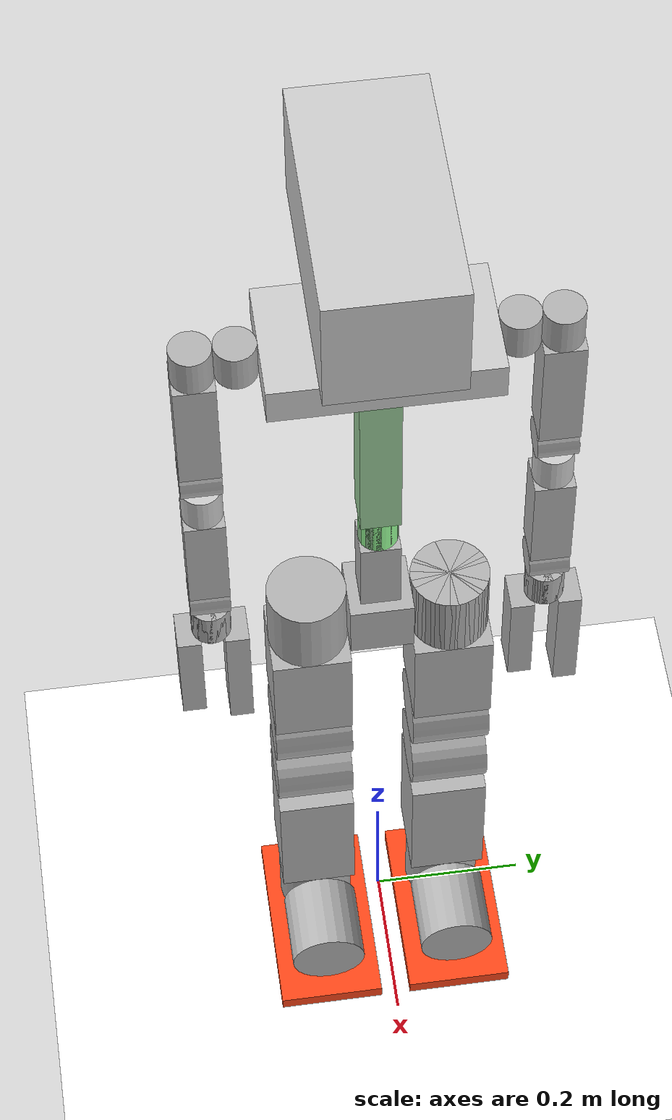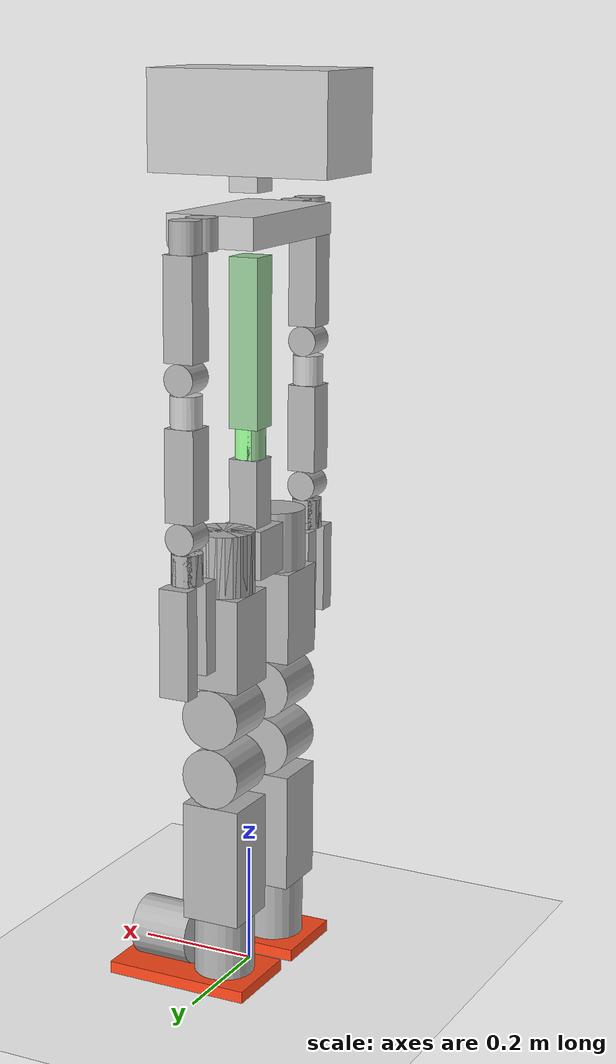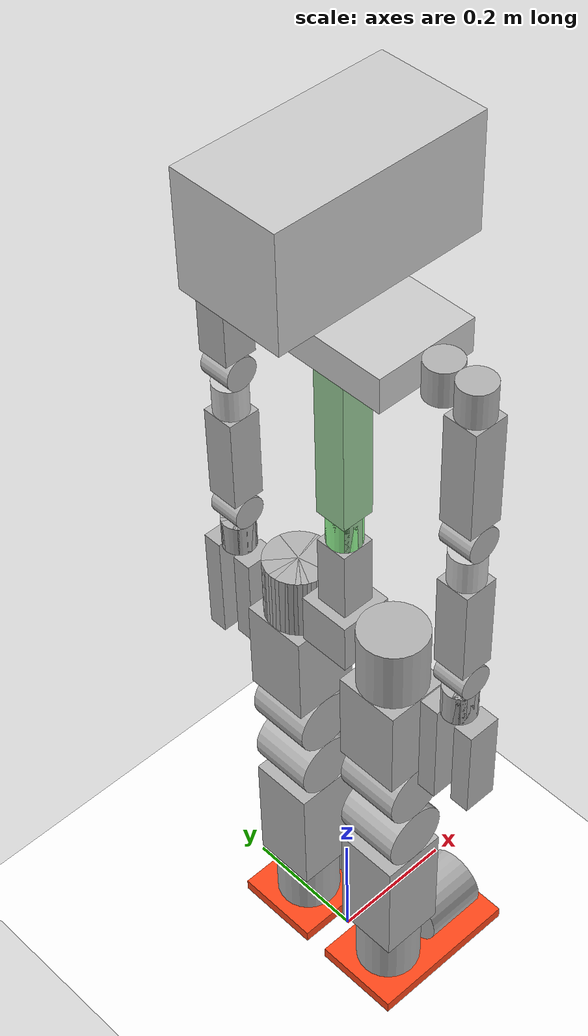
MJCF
<mujoco model="simple_humanoid">
  <default>
    <default class="robot">
      <default class="motor">
        <joint armature="0.001" frictionloss="0.1" damping="0.1" actuatorfrcrange="-10.0 10.0" />
        <motor ctrlrange="-572.958 572.958" />
      </default>
      <default class="visual">
        <geom material="visualgeom" contype="0" conaffinity="0" group="2" />
      </default>
      <default class="collision">
        <geom material="collision_material" condim="3" contype="0" conaffinity="1" priority="1" group="1" solref="0.005 1" solimp="0.99 0.999 1e-05" friction="1 0.01 0.01" />
      </default>
    </default>
    <default class="backlash">
      <joint damping="0.01" frictionloss="0" armature="0.01" limited="true" range="-0.5 0.5" />
    </default>
    <default class="floor">
      <geom contype="1" conaffinity="1" group="0" type="plane" size="0 0 0.05" material="groundplane" rgba="1 1 1 0.3" />
    </default>
  </default>

  <compiler angle="degree" />

  <asset>
    <material name="WAIST_LINK1_APP" rgba="0.6 1.0 0.6 1" />
    <material name="WAIST_LINK2_APP" rgba="0.6 0.8 0.6 1" />
    <material name="WAIST_LINK3_APP" rgba="0.8 0.8 0.8 1" />
    <material name="default_material" rgba="0.7 0.7 0.7 1" />
    <material name="collision_material" rgba="1.0 0.28 0.1 0.9" />
    <texture type="2d" name="groundplane" builtin="checker" mark="edge" rgb1="0.2 0.3 0.4" rgb2="0.1 0.2 0.3" markrgb="0.8 0.8 0.8" width="300" height="300" />
    <material name="groundplane" texture="groundplane" texuniform="true" texrepeat="5 5" reflectance="0.2" />
  </asset>

  <worldbody>
    <body name="BODY" pos="0.00000000 0.00000000 0.72350000" quat="1 0 0 0" childclass="robot">
      <freejoint name="floating_base" />
      <geom name="BODY_visual_0" pos="0 0 0.0955" quat="1.0 0.0 0.0 0.0" material="default_material" type="box" size="0.025 0.025 0.0555" class="visual" />
      <geom name="BODY_visual_1" pos="0 0 0" quat="1.0 0.0 0.0 0.0" material="default_material" type="box" size="0.04 0.04 0.04" class="visual" />
      <body name="IMU" pos="0 0 0" quat="1.0 0.0 0.0 0.0">
        <inertial pos="0 0 0" quat="1.0 0.0 0.0 0.0" mass="0" diaginertia="1.0 1.0 1.0" />
        <geom name="IMU_visual" pos="0 0 0" quat="1.0 0.0 0.0 0.0" material="default_material" type="box" size="0.025 0.025 0.025" class="visual" />
        <site name="IMU_site" pos="0.0 0.0 0.0" />
      </body>
      <body name="RLEG_LINK1" pos="0 -0.09 0" quat="1.0 0.0 0.0 0.0">
        <joint name="RLEG_HIP_R" type="hinge" ref="0.0" class="motor" range="-20 90" axis="1 0 0" />
        <joint name="RLEG_HIP_R_backlash" class="backlash" axis="1 0 0" />
        <inertial pos="0 -0.1 0" quat="1.0 0.0 0.0 0.0" mass="2.5" diaginertia="1.0 1.0 1.0" />
        <geom name="RLEG_LINK1_visual" pos="0 0 0" quat="0.7071231599922605 0.0 0.0 0.7070904020014415" material="default_material" type="cylinder" size="0.05 0.05" class="visual" />
        <body name="RLEG_LINK2" pos="0 0 0" quat="1.0 0.0 0.0 0.0">
          <joint name="RLEG_HIP_P" type="hinge" ref="0.0" class="motor" range="-30.0001 30.0001" axis="0 1 0" />
          <joint name="RLEG_HIP_P_backlash" class="backlash" axis="0 1 0" />
          <inertial pos="0 0 -0.15" quat="1.0 0.0 0.0 0.0" mass="2" diaginertia="1.0 1.0 1.0" />
          <geom name="RLEG_LINK2_visual" pos="0 0 0" quat="0.7071231599922605 0.0 0.0 0.7070904020014415" material="default_material" type="cylinder" size="0.05 0.05" class="visual" />
          <body name="RLEG_LINK3" pos="0 0 -0.3535" quat="1.0 0.0 0.0 0.0">
            <joint name="RLEG_HIP_Y" type="hinge" ref="0.0" class="motor" range="-120.035 40.107" axis="0 0 1" />
            <joint name="RLEG_HIP_Y_backlash" class="backlash" axis="0 0 1" />
            <inertial pos="0 -0.04 0" quat="1.0 0.0 0.0 0.0" mass="5.1" diaginertia="1.0 1.0 1.0" />
            <geom name="RLEG_LINK3_visual_0" pos="0 0 0.22675" quat="1.0 0.0 0.0 0.0" material="default_material" type="box" size="0.05 0.05 0.07675" class="visual" />
            <geom name="RLEG_LINK3_visual_1" pos="0 0 0.1" quat="0.7071054825112363 0.7071080798594735 0.0 0.0" material="default_material" type="cylinder" size="0.05 0.05" class="visual" />
            <body name="RLEG_LINK4" pos="0 0 0" quat="1.0 0.0 0.0 0.0">
              <joint name="RLEG_KNEE" type="hinge" ref="0.0" class="motor" range="0 150" axis="0 1 0" />
              <joint name="RLEG_KNEE_backlash" class="backlash" axis="0 1 0" />
              <inertial pos="0 0 -0.3" quat="1.0 0.0 0.0 0.0" mass="7" diaginertia="1.0 1.0 1.0" />
              <geom name="RLEG_LINK4_visual_0" pos="0 0 0" quat="0.7071054825112363 0.7071080798594735 0.0 0.0" material="default_material" type="cylinder" size="0.05 0.05" class="visual" />
              <geom name="RLEG_LINK4_visual_1" pos="0 0 -0.15" quat="1.0 0.0 0.0 0.0" material="default_material" type="box" size="0.05 0.05 0.1" class="visual" />
              <body name="RLEG_LINK5" pos="0 0 -0.3" quat="1.0 0.0 0.0 0.0">
                <joint name="RLEG_ANKLE_P" type="hinge" ref="0.0" class="motor" range="0 150" axis="0 1 0" />
                <joint name="RLEG_ANKLE_P_backlash" class="backlash" axis="0 1 0" />
                <inertial pos="-0.15 0 0" quat="1.0 0.0 0.0 0.0" mass="2.5" diaginertia="1.0 1.0 1.0" />
                <geom name="RLEG_LINK5_visual" pos="0 0 0" quat="1 0 0 0" material="default_material" type="cylinder" size="0.05 0.05" class="visual" />
                <body name="r_ankle" pos="0 0 0" quat="1.0 0.0 0.0 0.0">
                  <joint name="RLEG_ANKLE_R" type="hinge" ref="0.0" class="motor" range="-72.7656 38.9611" axis="1 0 0" />
                  <joint name="RLEG_ANKLE_R_backlash" class="backlash" axis="1 0 0" />
                  <inertial pos="0.28 0 -0.2" quat="1.0 0.0 0.0 0.0" mass="1.9" diaginertia="1.0 1.0 1.0" />
                  <geom name="r_ankle_collision" pos="0.055 0 -0.06" quat="1.0 0.0 0.0 0.0" type="box" size="0.125 0.07 0.01" class="collision" />
                  <geom name="r_ankle_visual_0" pos="0.055 0 -0.06" quat="1.0 0.0 0.0 0.0" material="default_material" type="box" size="0.125 0.07 0.01" class="visual" />
                  <geom name="r_ankle_visual_1" pos="0.1 0 0.0" quat="0.7071054825112363 0.0 0.7071080798594735 0.0" material="default_material" type="cylinder" size="0.05 0.05" class="visual" />
                </body>
              </body>
            </body>
          </body>
        </body>
      </body>
      <body name="LLEG_LINK1" pos="0 0.09 0" quat="1.0 0.0 0.0 0.0">
        <joint name="LLEG_HIP_R" type="hinge" ref="0.0" class="motor" range="-20 90" axis="1 0 0" />
        <joint name="LLEG_HIP_R_backlash" class="backlash" axis="1 0 0" />
        <inertial pos="0 0.1 0" quat="1.0 0.0 0.0 0.0" mass="2.5" diaginertia="1.0 1.0 1.0" />
        <geom name="LLEG_LINK1_visual" pos="0 0 0" quat="0.7071231599922605 0.0 0.0 0.7070904020014415" material="default_material" type="cylinder" size="0.05 0.05" class="visual" />
        <body name="LLEG_LINK2" pos="0 0 0" quat="1.0 0.0 0.0 0.0">
          <joint name="LLEG_HIP_P" type="hinge" ref="0.0" class="motor" range="-20 90" axis="0 1 0" />
          <joint name="LLEG_HIP_P_backlash" class="backlash" axis="0 1 0" />
          <inertial pos="0 0 -0.15" quat="1.0 0.0 0.0 0.0" mass="2" diaginertia="1.0 1.0 1.0" />
          <geom name="LLEG_LINK2_visual" pos="0 0 0" quat="1 0 0 0" material="default_material" type="cylinder" size="0.05 0.05" class="visual" />
          <body name="LLEG_LINK3" pos="0 0 -0.3535" quat="1.0 0.0 0.0 0.0">
            <joint name="LLEG_HIP_Y" type="hinge" ref="0.0" class="motor" range="-30.0001 30.0001" axis="0 0 1" />
            <joint name="LLEG_HIP_Y_backlash" class="backlash" axis="0 0 1" />
            <inertial pos="0 0.04 0" quat="1.0 0.0 0.0 0.0" mass="5.1" diaginertia="1.0 1.0 1.0" />
            <geom name="LLEG_LINK3_visual_0" pos="0 0 0.22675" quat="1.0 0.0 0.0 0.0" material="default_material" type="box" size="0.05 0.05 0.07675" class="visual" />
            <geom name="LLEG_LINK3_visual_1" pos="0 0 0.1" quat="0.7071054825112363 0.7071080798594735 0.0 0.0" material="default_material" type="cylinder" size="0.05 0.05" class="visual" />
            <body name="LLEG_LINK4" pos="0 0 0" quat="1.0 0.0 0.0 0.0">
              <joint name="LLEG_KNEE" type="hinge" ref="0.0" class="motor" range="-120.035 40.107" axis="0 1 0" />
              <joint name="LLEG_KNEE_backlash" class="backlash" axis="0 1 0" />
              <inertial pos="0 0 -0.3" quat="1.0 0.0 0.0 0.0" mass="7" diaginertia="1.0 1.0 1.0" />
              <geom name="LLEG_LINK4_visual_0" pos="0 0 0" quat="0.7071054825112363 0.7071080798594735 0.0 0.0" material="default_material" type="cylinder" size="0.05 0.05" class="visual" />
              <geom name="LLEG_LINK4_visual_1" pos="0 0 -0.15" quat="1.0 0.0 0.0 0.0" material="default_material" type="box" size="0.05 0.05 0.1" class="visual" />
              <body name="LLEG_LINK5" pos="0 0 -0.3" quat="1.0 0.0 0.0 0.0">
                <joint name="LLEG_ANKLE_P" type="hinge" ref="0.0" class="motor" range="0 150" axis="0 1 0" />
                <joint name="LLEG_ANKLE_P_backlash" class="backlash" axis="0 1 0" />
                <inertial pos="-0.15 0 0" quat="1.0 0.0 0.0 0.0" mass="2.5" diaginertia="1.0 1.0 1.0" />
                <geom name="LLEG_LINK5_visual" pos="0 0 0" quat="1 0 0 0" material="default_material" type="cylinder" size="0.05 0.05" class="visual" />
                <body name="l_ankle" pos="0 0 0" quat="1.0 0.0 0.0 0.0">
                  <joint name="LLEG_ANKLE_R" type="hinge" ref="0.0" class="motor" range="-72.7656 38.9611" axis="1 0 0" />
                  <joint name="LLEG_ANKLE_R_backlash" class="backlash" axis="1 0 0" />
                  <inertial pos="0.28 0 -0.2" quat="1.0 0.0 0.0 0.0" mass="1.9" diaginertia="1.0 1.0 1.0" />
                  <geom name="l_ankle_collision" pos="0.055 0 -0.06" quat="1.0 0.0 0.0 0.0" type="box" size="0.125 0.07 0.01" class="collision" />
                  <geom name="l_ankle_visual_0" pos="0.055 0 -0.06" quat="1.0 0.0 0.0 0.0" material="default_material" type="box" size="0.125 0.07 0.01" class="visual" />
                  <geom name="l_ankle_visual_1" pos="0.1 0 0.0" quat="0.7071054825112363 0.0 0.7071080798594735 0.0" material="default_material" type="cylinder" size="0.05 0.05" class="visual" />
                </body>
              </body>
            </body>
          </body>
        </body>
      </body>
      <body name="WAIST_LINK1" pos="0 0 0.176" quat="1.0 0.0 0.0 0.0">
        <joint name="WAIST_P" type="hinge" ref="0.0" class="motor" range="-72.7656 72.7656" axis="0 1 0" />
        <joint name="WAIST_P_backlash" class="backlash" axis="0 1 0" />
        <inertial pos="0 0 -0.1" quat="1.0 0.0 0.0 0.0" mass="6" diaginertia="1.0 1.0 1.0" />
        <geom name="WAIST_LINK1_visual" pos="0 0 0" quat="1 0 0 0" material="WAIST_LINK1_APP" type="cylinder" size="0.025 0.025" class="visual" />
        <body name="WAIST_LINK2" pos="0 0 0" quat="1.0 0.0 0.0 0.0">
          <joint name="WAIST_R" type="hinge" ref="0.0" class="motor" range="-72.7656 72.7656" axis="1 0 0" />
          <joint name="WAIST_R_backlash" class="backlash" axis="1 0 0" />
          <inertial pos="0.11 0 0.25" quat="1.0 0.0 0.0 0.0" mass="30" diaginertia="1.0 1.0 1.0" />
          <geom name="WAIST_LINK2_visual_0" pos="0 0 0" quat="0.7071054825112363 0.0 0.0 0.7071080798594735" material="WAIST_LINK2_APP" type="cylinder" size="0.025 0.025" class="visual" />
          <geom name="WAIST_LINK2_visual_1" pos="0 0 0.1625" quat="1.0 0.0 0.0 0.0" material="WAIST_LINK2_APP" type="box" size="0.025 0.025 0.1375" class="visual" />
          <body name="torso" pos="0 0 0.35" quat="1.0 0.0 0.0 0.0">
            <joint name="CHEST" type="hinge" ref="0.0" class="motor" range="-72.7656 72.7656" axis="0 0 1" />
            <joint name="CHEST_backlash" class="backlash" axis="0 0 1" />
            <inertial pos="0 0 0" quat="1.0 0.0 0.0 0.0" mass="13" diaginertia="1.0 1.0 1.0" />
            <geom name="torso_visual_0" pos="0 0 0" quat="0.7071054825112363 0.7071080798594735 0.0 0.0" material="WAIST_LINK3_APP" type="cylinder" size="0.025 0.05" class="visual" />
            <geom name="torso_visual_1" pos="0 0 0" quat="1 0 0 0" material="WAIST_LINK3_APP" type="box" size="0.075 0.135 0.025" class="visual" />
            <geom name="torso_visual_2" pos="0 0 0.065" quat="1.0 0.0 0.0 0.0" material="WAIST_LINK3_APP" type="box" size="0.025 0.025 0.015" class="visual" />
            <geom name="torso_visual_3" pos="-0.015 0 0.16" quat="1.0 0.0 0.0 0.0" material="WAIST_LINK3_APP" type="box" size="0.155 0.08 0.08" class="visual" />
            <body name="RARM_LINK1" pos="0 -0.21 0" quat="1.0 0.0 0.0 0.0">
              <joint name="RARM_SHOULDER_P" type="hinge" ref="0.0" class="motor" range="-90 45" axis="0 1 0" />
              <joint name="RARM_SHOULDER_P_backlash" class="backlash" axis="0 1 0" />
              <inertial pos="0.1 0 0" quat="1.0 0.0 0.0 0.0" mass="3" diaginertia="1.0 1.0 1.0" />
              <geom name="RARM_LINK1_visual" pos="0 0.05 0.0" quat="1.0 0.0 0.0 0.0" material="default_material" type="cylinder" size="0.025 0.025" class="visual" />
              <body name="RARM_LINK2" pos="0 0 0" quat="1.0 0.0 0.0 0.0">
                <joint name="RARM_SHOULDER_R" type="hinge" ref="0.0" class="motor" range="0.5 164.5" axis="1 0 0" />
                <joint name="RARM_SHOULDER_R_backlash" class="backlash" axis="1 0 0" />
                <inertial pos="0 0 -0.1" quat="1.0 0.0 0.0 0.0" mass="0.6" diaginertia="1.0 1.0 1.0" />
                <geom name="RARM_LINK2_visual_0" pos="0 0.0 0.0" quat="0.7071054825112363 0.0 0.0 0.7071080798594735" material="default_material" type="cylinder" size="0.025 0.025" class="visual" />
                <geom name="RARM_LINK2_visual_1" pos="0 0.0 -0.1065" quat="1.0 0.0 0.0 0.0" material="default_material" type="box" size="0.025 0.025 0.0815" class="visual" />
                <body name="RARM_LINK3" pos="0 0 -0.263" quat="1.0 0.0 0.0 0.0">
                  <joint name="RARM_SHOULDER_Y" type="hinge" ref="0.0" class="motor" range="-139 139" axis="0 0 1" />
                  <joint name="RARM_SHOULDER_Y_backlash" class="backlash" axis="0 0 1" />
                  <inertial pos="0 0 0" quat="1.0 0.0 0.0 0.0" mass="1" diaginertia="1.0 1.0 1.0" />
                  <geom name="RARM_LINK3_visual" pos="0 0.0 0.05" quat="0.7071054825112363 0.7071080798594735 0.0 0.0" material="default_material" type="cylinder" size="0.025 0.025" class="visual" />
                  <body name="RARM_LINK4" pos="0 0 0" quat="1.0 0.0 0.0 0.0">
                    <joint name="RARM_ELBOW" type="hinge" ref="0.0" class="motor" range="-128 0.2" axis="0 1 0" />
                    <joint name="RARM_ELBOW_backlash" class="backlash" axis="0 1 0" />
                    <inertial pos="0 0 -0.3" quat="1.0 0.0 0.0 0.0" mass="0.6" diaginertia="1.0 1.0 1.0" />
                    <geom name="RARM_LINK4_visual_0" pos="0 0 0" quat="1 0 0 0" material="WAIST_LINK3_APP" type="cylinder" size="0.025 0.025" class="visual" />
                    <geom name="RARM_LINK4_visual_1" pos="0 0.0 -0.0985" quat="1.0 0.0 0.0 0.0" material="default_material" type="box" size="0.025 0.025 0.0735" class="visual" />
                    <body name="RARM_LINK5" pos="0 0 -0.247" quat="1.0 0.0 0.0 0.0">
                      <joint name="RARM_WRIST_Y" type="hinge" ref="0.0" class="motor" range="-144 144" axis="0 0 1" />
                      <joint name="RARM_WRIST_Y_backlash" class="backlash" axis="0 0 1" />
                      <inertial pos="0 0 0.1" quat="1.0 0.0 0.0 0.0" mass="0.4" diaginertia="1.0 1.0 1.0" />
                      <geom name="RARM_LINK5_visual" pos="0 0 0.05" quat="0.7071054825112363 0.7071080798594735 0.0 0.0" material="default_material" type="cylinder" size="0.025 0.025" class="visual" />
                      <body name="RARM_LINK6" pos="0 0 0" quat="1.0 0.0 0.0 0.0">
                        <joint name="RARM_WRIST_P" type="hinge" ref="0.0" class="motor" range="-78.5 78.5" axis="0 1 0" />
                        <joint name="RARM_WRIST_P_backlash" class="backlash" axis="0 1 0" />
                        <inertial pos="-0.1 0 0" quat="1.0 0.0 0.0 0.0" mass="0.4" diaginertia="1.0 1.0 1.0" />
                        <geom name="RARM_LINK6_visual_0" pos="0 0 0" quat="1 0 0 0" material="default_material" type="cylinder" size="0.025 0.025" class="visual" />
                        <geom name="RARM_LINK6_visual_1" pos="0 0 0" quat="0.7071054825112363 0.0 0.0 0.7071080798594735" material="default_material" type="cylinder" size="0.025 0.025" class="visual" />
                        <geom name="RARM_LINK6_visual_2" pos="0 0.03 -0.1125" quat="1.0 0.0 0.0 0.0" material="default_material" type="box" size="0.025 0.015 0.0875" class="visual" />
                        <body name="r_wrist" pos="0 0 0" quat="1.0 0.0 0.0 0.0">
                          <joint name="RARM_WRIST_R" type="hinge" ref="0.0" class="motor" range="-39 39" axis="1 0 0" />
                          <joint name="RARM_WRIST_R_backlash" class="backlash" axis="1 0 0" />
                          <inertial pos="0 0 -0.1" quat="1.0 0.0 0.0 0.0" mass="0.4" diaginertia="1.0 1.0 1.0" />
                          <geom name="r_wrist_visual" pos="0 -0.03 -0.1" quat="1.0 0.0 0.0 0.0" material="default_material" type="box" size="0.025 0.015 0.075" class="visual" />
                        </body>
                      </body>
                    </body>
                  </body>
                </body>
              </body>
            </body>
            <body name="LARM_LINK1" pos="0 0.21 0" quat="1.0 0.0 0.0 0.0">
              <joint name="LARM_SHOULDER_P" type="hinge" ref="0.0" class="motor" range="-90 45" axis="0 1 0" />
              <joint name="LARM_SHOULDER_P_backlash" class="backlash" axis="0 1 0" />
              <inertial pos="0.1 0 0" quat="1.0 0.0 0.0 0.0" mass="3" diaginertia="1.0 1.0 1.0" />
              <geom name="LARM_LINK1_visual" pos="0 -0.05 0.0" quat="1.0 0.0 0.0 0.0" material="default_material" type="cylinder" size="0.025 0.025" class="visual" />
              <body name="LARM_LINK2" pos="0 0 0" quat="1.0 0.0 0.0 0.0">
                <joint name="LARM_SHOULDER_R" type="hinge" ref="0.0" class="motor" range="0.5 164.5" axis="1 0 0" />
                <joint name="LARM_SHOULDER_R_backlash" class="backlash" axis="1 0 0" />
                <inertial pos="0 0 -0.1" quat="1.0 0.0 0.0 0.0" mass="0.6" diaginertia="1.0 1.0 1.0" />
                <geom name="LARM_LINK2_visual_0" pos="0 0.0 0.0" quat="0.7071054825112363 0.0 0.0 0.7071080798594735" material="default_material" type="cylinder" size="0.025 0.025" class="visual" />
                <geom name="LARM_LINK2_visual_1" pos="0 0.0 -0.1065" quat="1.0 0.0 0.0 0.0" material="default_material" type="box" size="0.025 0.025 0.0815" class="visual" />
                <body name="LARM_LINK3" pos="0 0 -0.263" quat="1.0 0.0 0.0 0.0">
                  <joint name="LARM_SHOULDER_Y" type="hinge" ref="0.0" class="motor" range="-90 45" axis="0 0 1" />
                  <joint name="LARM_SHOULDER_Y_backlash" class="backlash" axis="0 0 1" />
                  <inertial pos="0 0 0" quat="1.0 0.0 0.0 0.0" mass="1" diaginertia="1.0 1.0 1.0" />
                  <geom name="LARM_LINK3_visual" pos="0 0.0 0.05" quat="0.7071054825112363 0.7071080798594735 0.0 0.0" material="default_material" type="cylinder" size="0.025 0.025" class="visual" />
                  <body name="LARM_LINK4" pos="0 0 0" quat="1.0 0.0 0.0 0.0">
                    <joint name="LARM_ELBOW" type="hinge" ref="0.0" class="motor" range="-139 139" axis="0 1 0" />
                    <joint name="LARM_ELBOW_backlash" class="backlash" axis="0 1 0" />
                    <inertial pos="0 0 -0.3" quat="1.0 0.0 0.0 0.0" mass="0.6" diaginertia="1.0 1.0 1.0" />
                    <geom name="LARM_LINK4_visual_0" pos="0 0 0" quat="1 0 0 0" material="WAIST_LINK3_APP" type="cylinder" size="0.025 0.025" class="visual" />
                    <geom name="LARM_LINK4_visual_1" pos="0 0.0 -0.0985" quat="1.0 0.0 0.0 0.0" material="default_material" type="box" size="0.025 0.025 0.0735" class="visual" />
                    <body name="LARM_LINK5" pos="0 0 -0.247" quat="1.0 0.0 0.0 0.0">
                      <joint name="LARM_WRIST_Y" type="hinge" ref="0.0" class="motor" range="-128 0.2" axis="0 0 1" />
                      <joint name="LARM_WRIST_Y_backlash" class="backlash" axis="0 0 1" />
                      <inertial pos="0 0 0.1" quat="1.0 0.0 0.0 0.0" mass="0.4" diaginertia="1.0 1.0 1.0" />
                      <geom name="LARM_LINK5_visual" pos="0 0 0.05" quat="0.7071054825112363 0.7071080798594735 0.0 0.0" material="default_material" type="cylinder" size="0.025 0.025" class="visual" />
                      <body name="LARM_LINK6" pos="0 0 0" quat="1.0 0.0 0.0 0.0">
                        <joint name="LARM_WRIST_P" type="hinge" ref="0.0" class="motor" range="-144 144" axis="0 1 0" />
                        <joint name="LARM_WRIST_P_backlash" class="backlash" axis="0 1 0" />
                        <inertial pos="-0.1 0 0" quat="1.0 0.0 0.0 0.0" mass="0.4" diaginertia="1.0 1.0 1.0" />
                        <geom name="LARM_LINK6_visual_0" pos="0 0 0" quat="1 0 0 0" material="default_material" type="cylinder" size="0.025 0.025" class="visual" />
                        <geom name="LARM_LINK6_visual_1" pos="0 0 0" quat="0.7071054825112363 0.0 0.0 0.7071080798594735" material="default_material" type="cylinder" size="0.025 0.025" class="visual" />
                        <geom name="LARM_LINK6_visual_2" pos="0 0.03 -0.1125" quat="1.0 0.0 0.0 0.0" material="default_material" type="box" size="0.025 0.015 0.0875" class="visual" />
                        <body name="l_wrist" pos="0 0 0" quat="1.0 0.0 0.0 0.0">
                          <joint name="LARM_WRIST_R" type="hinge" ref="0.0" class="motor" range="-78.5 78.5" axis="1 0 0" />
                          <joint name="LARM_WRIST_R_backlash" class="backlash" axis="1 0 0" />
                          <inertial pos="0 0 -0.1" quat="1.0 0.0 0.0 0.0" mass="0.4" diaginertia="1.0 1.0 1.0" />
                          <geom name="l_wrist_visual" pos="0 -0.03 -0.1" quat="1.0 0.0 0.0 0.0" material="default_material" type="box" size="0.025 0.015 0.075" class="visual" />
                        </body>
                      </body>
                    </body>
                  </body>
                </body>
              </body>
            </body>
          </body>
        </body>
      </body>
      <site name="BODY_site" pos="0 0 0" quat="1 0 0 0" />
      <camera name="front_camera" mode="track" fovy="90.0" quat="4.329780281177467e-17 4.329780281177466e-17 0.7071067811865475 0.7071067811865476" pos="0.0 2.0 0.5" />
      <camera name="side_camera" mode="track" fovy="90.0" quat="-0.5 -0.4999999999999999 0.5 0.5000000000000001" pos="-2.0 0.0 0.5" />
    </body>
    <geom name="floor" class="floor" size="0 0 0.05" />
  </worldbody>

  <actuator>
    <motor name="RLEG_HIP_R_ctrl" joint="RLEG_HIP_R" class="motor" />
    <motor name="RLEG_HIP_P_ctrl" joint="RLEG_HIP_P" class="motor" />
    <motor name="RLEG_HIP_Y_ctrl" joint="RLEG_HIP_Y" class="motor" />
    <motor name="RLEG_KNEE_ctrl" joint="RLEG_KNEE" class="motor" />
    <motor name="RLEG_ANKLE_P_ctrl" joint="RLEG_ANKLE_P" class="motor" />
    <motor name="RLEG_ANKLE_R_ctrl" joint="RLEG_ANKLE_R" class="motor" />
    <motor name="LLEG_HIP_R_ctrl" joint="LLEG_HIP_R" class="motor" />
    <motor name="LLEG_HIP_P_ctrl" joint="LLEG_HIP_P" class="motor" />
    <motor name="LLEG_HIP_Y_ctrl" joint="LLEG_HIP_Y" class="motor" />
    <motor name="LLEG_KNEE_ctrl" joint="LLEG_KNEE" class="motor" />
    <motor name="LLEG_ANKLE_P_ctrl" joint="LLEG_ANKLE_P" class="motor" />
    <motor name="LLEG_ANKLE_R_ctrl" joint="LLEG_ANKLE_R" class="motor" />
    <motor name="WAIST_P_ctrl" joint="WAIST_P" class="motor" />
    <motor name="WAIST_R_ctrl" joint="WAIST_R" class="motor" />
    <motor name="CHEST_ctrl" joint="CHEST" class="motor" />
    <motor name="RARM_SHOULDER_P_ctrl" joint="RARM_SHOULDER_P" class="motor" />
    <motor name="RARM_SHOULDER_R_ctrl" joint="RARM_SHOULDER_R" class="motor" />
    <motor name="RARM_SHOULDER_Y_ctrl" joint="RARM_SHOULDER_Y" class="motor" />
    <motor name="RARM_ELBOW_ctrl" joint="RARM_ELBOW" class="motor" />
    <motor name="RARM_WRIST_Y_ctrl" joint="RARM_WRIST_Y" class="motor" />
    <motor name="RARM_WRIST_P_ctrl" joint="RARM_WRIST_P" class="motor" />
    <motor name="RARM_WRIST_R_ctrl" joint="RARM_WRIST_R" class="motor" />
    <motor name="LARM_SHOULDER_P_ctrl" joint="LARM_SHOULDER_P" class="motor" />
    <motor name="LARM_SHOULDER_R_ctrl" joint="LARM_SHOULDER_R" class="motor" />
    <motor name="LARM_SHOULDER_Y_ctrl" joint="LARM_SHOULDER_Y" class="motor" />
    <motor name="LARM_ELBOW_ctrl" joint="LARM_ELBOW" class="motor" />
    <motor name="LARM_WRIST_Y_ctrl" joint="LARM_WRIST_Y" class="motor" />
    <motor name="LARM_WRIST_P_ctrl" joint="LARM_WRIST_P" class="motor" />
    <motor name="LARM_WRIST_R_ctrl" joint="LARM_WRIST_R" class="motor" />
  </actuator>

  <sensor>
    <framepos name="BODY_site_pos" objtype="site" objname="BODY_site" />
    <framequat name="BODY_site_quat" objtype="site" objname="BODY_site" />
    <framelinvel name="BODY_site_linvel" objtype="site" objname="BODY_site" />
    <frameangvel name="BODY_site_angvel" objtype="site" objname="BODY_site" />
    <velocimeter name="BODY_site_vel" site="BODY_site" />
    <accelerometer name="IMU_acc" site="IMU_site" noise="0.001" />
    <gyro name="IMU_gyro" site="IMU_site" noise="0.01" />
    <magnetometer name="IMU_mag" site="IMU_site" />
    <framepos name="IMU_site_pos" objtype="site" objname="IMU_site" />
    <framequat name="IMU_site_quat" objtype="site" objname="IMU_site" />
    <framelinvel name="IMU_site_linvel" objtype="site" objname="IMU_site" />
    <frameangvel name="IMU_site_angvel" objtype="site" objname="IMU_site" />
    <velocimeter name="IMU_site_vel" site="IMU_site" />
  </sensor>
</mujoco>
